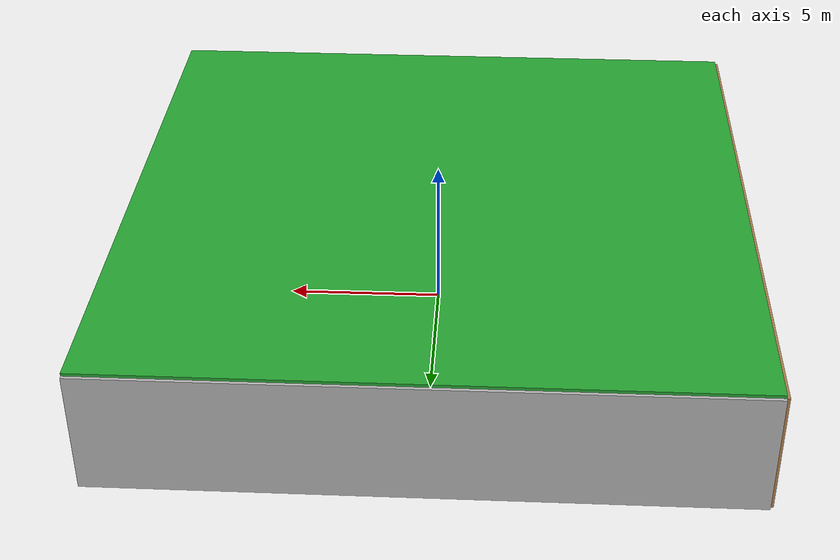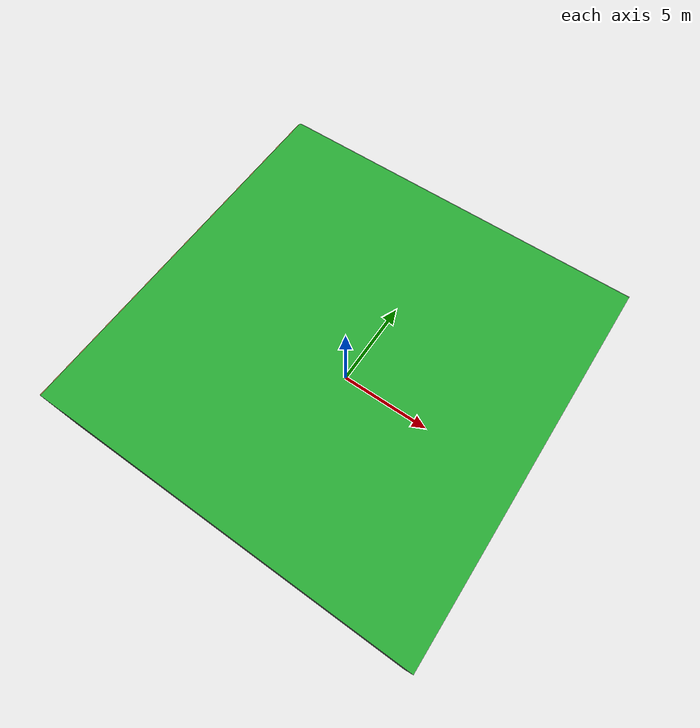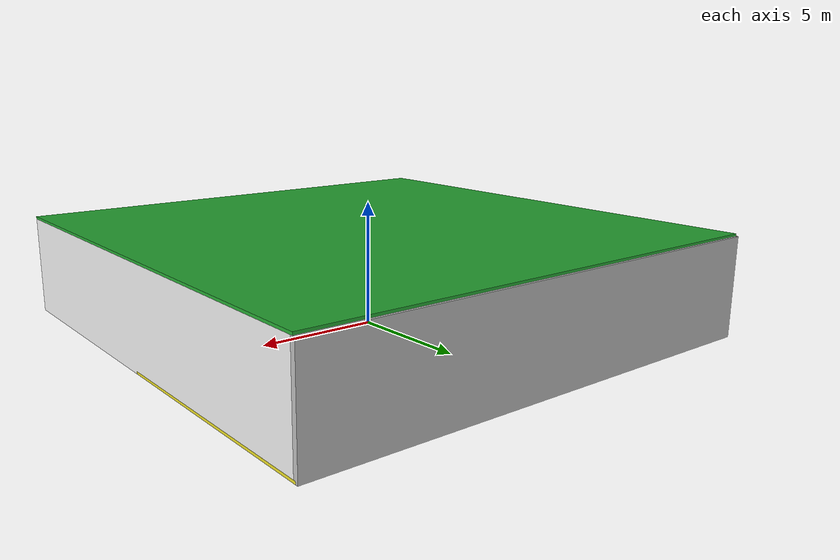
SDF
<sdf version="1.4">
 <world name="default">
  <physics type="ode">
   <max_step_size>0.001</max_step_size>
   <real_time_factor>1</real_time_factor>
   <real_time_update_rate>1000</real_time_update_rate>
   <gravity>0 0 -9.8</gravity>
  </physics>
  <scene><ambient>0.4 0.4 0.4 1</ambient><background>0.7 0.7 0.7 1</background><shadows>1</shadows></scene>
  <model name="Surrounding">
   <static>1</static>
   <link name="Ceiling">
    <collision name="Ceiling_Collision"><geometry><box><size>20 20 0.1</size></box></geometry></collision>
    <visual name="Ceiling_Visual">
     <geometry><box><size>20 20 0.1</size></box></geometry>
     <material>
      <script><uri>file://media/materials/scripts/gazebo.material</uri><name>Gazebo/Green</name></script>
     </material>
    </visual>
    <pose>0 0 4.05 0 0 0</pose>
   </link>
   <link name="Wall_South">
    <collision name="Wall_South_Collision">
     <geometry><box><size>20 0 4</size></box></geometry>
     <pose>0 0 2 0 -0 0</pose>
    </collision>
    <visual name="Wall_South_Visual">
     <pose>0 0 2 0 -0 0</pose>
     <geometry><box><size>20 0 4</size></box></geometry>
     <material>
      <script><uri>file://media/materials/scripts/gazebo.material</uri><name>Gazebo/GreyGradientSky</name></script>
     </material>
    </visual>
    <velocity_decay><linear>0</linear><angular>0</angular></velocity_decay>
    <pose>0 -10 0 0 -0 0</pose>
   </link>
   <link name="Wall_East">
    <collision name="Wall_21_Collision">
     <geometry><box><size>20 0 4</size></box></geometry>
     <pose>0 0 2 0 -0 0</pose>
    </collision>
    <visual name="Wall_21_Visual">
     <pose>0 0 2 0 -0 0</pose>
     <geometry><box><size>20 0 4</size></box></geometry>
     <material>
      <script><uri>file://media/materials/scripts/gazebo.material</uri><name>Gazebo/White</name></script>
     </material>
    </visual>
    <velocity_decay><linear>0</linear><angular>0</angular></velocity_decay>
    <pose>10 0 0 0 -0 1.5708</pose>
   </link>
   <link name="Wall_North">
    <collision name="Wall_22_Collision">
     <geometry><box><size>20 0.2 4</size></box></geometry>
     <pose>0 0 2 0 -0 0</pose>
    </collision>
    <visual name="Wall_22_Visual">
     <pose>0 0 2 0 -0 0</pose>
     <geometry><box><size>20 0.2 4</size></box></geometry>
     <material>
      <script><uri>file://media/materials/scripts/gazebo.material</uri><name>Gazebo/CloudySky</name></script>
     </material>
    </visual>
    <velocity_decay><linear>0</linear><angular>0</angular></velocity_decay>
    <pose>0 10 0 0 -0 0</pose>
   </link>
   <link name="Wall_West">
    <collision name="Wall_23_Collision">
     <geometry><box><size>20 0.2 4</size></box></geometry>
     <pose>0 0 2 0 -0 0</pose>
    </collision>
    <visual name="Wall_23_Visual">
     <pose>0 0 2 0 -0 0</pose>
     <geometry><box><size>20 0.2 4</size></box></geometry>
     <material>
      <script><uri>file://media/materials/scripts/gazebo.material</uri><name>Gazebo/Wood</name></script>
     </material>
    </visual>
    <velocity_decay><linear>0</linear><angular>0</angular></velocity_decay>
    <pose>-10 0 0 0 0 -1.5708</pose>
   </link>
   <link name="Ground_link">
    <collision name="collision">
     <pose>0 0 .05 0 -0 0</pose>
     <geometry><box><size>20 20 0.1</size></box></geometry>
    </collision>
    <visual name="visual">
     <pose>0 0 .05 0 -0 0</pose>
     <geometry><box><size>20 20 0.1</size></box></geometry>
     <material>
      <script><uri>file://media/materials/scripts/gazebo.material</uri><name>Gazebo/Yellow</name></script>
     </material>
    </visual>
   </link>
   <static>1</static>
  </model>
  <spherical_coordinates>
   <surface_model>EARTH_WGS84</surface_model>
   <latitude_deg>0</latitude_deg>
   <longitude_deg>0</longitude_deg>
   <elevation>0</elevation>
   <heading_deg>0</heading_deg>
  </spherical_coordinates>
  <light name="lightball_0" type="diffuse">
   <diffuse>0.8 0.8 0.8 1</diffuse>
   <specular>0.2 0.2 0.2 1</specular>
   <attenuation>
    <range>100</range>
    <constant>0.7</constant>
    <linear>0.01</linear>
    <quadratic>0.001</quadratic>
   </attenuation>
   <direction>-0.5 0.1 -0.9</direction>
   <pose>5.59182568667 -4.65707299691 0.515571554724 0 0 0</pose>
  </light>
  <light name="lightball_1" type="diffuse">
   <diffuse>0.8 0.8 0.8 1</diffuse>
   <specular>0.2 0.2 0.2 1</specular>
   <attenuation>
    <range>100</range>
    <constant>0.7</constant>
    <linear>0.01</linear>
    <quadratic>0.001</quadratic>
   </attenuation>
   <direction>-0.5 0.1 -0.9</direction>
   <pose>-4.84402145688 -5.97625537195 0.950058430243 0 0 0</pose>
  </light>
  <light name="lightball_2" type="diffuse">
   <diffuse>0.8 0.8 0.8 1</diffuse>
   <specular>0.2 0.2 0.2 1</specular>
   <attenuation>
    <range>100</range>
    <constant>0.7</constant>
    <linear>0.01</linear>
    <quadratic>0.001</quadratic>
   </attenuation>
   <direction>-0.5 0.1 -0.9</direction>
   <pose>-7.02262429398 6.12709754766 3.1685810676 0 0 0</pose>
  </light>
  <light name="lightball_3" type="diffuse">
   <diffuse>0.8 0.8 0.8 1</diffuse>
   <specular>0.2 0.2 0.2 1</specular>
   <attenuation>
    <range>100</range>
    <constant>0.7</constant>
    <linear>0.01</linear>
    <quadratic>0.001</quadratic>
   </attenuation>
   <direction>-0.5 0.1 -0.9</direction>
   <pose>5.18106457293 -0.618834872043 3.54423332358 0 0 0</pose>
  </light>
  <light name="lightball_4" type="diffuse">
   <diffuse>0.8 0.8 0.8 1</diffuse>
   <specular>0.2 0.2 0.2 1</specular>
   <attenuation>
    <range>100</range>
    <constant>0.7</constant>
    <linear>0.01</linear>
    <quadratic>0.001</quadratic>
   </attenuation>
   <direction>-0.5 0.1 -0.9</direction>
   <pose>-0.55437144223 7.88434545381 2.95681729507 0 0 0</pose>
  </light>
  <light name="lightball_5" type="diffuse">
   <diffuse>0.8 0.8 0.8 1</diffuse>
   <specular>0.2 0.2 0.2 1</specular>
   <attenuation>
    <range>100</range>
    <constant>0.7</constant>
    <linear>0.01</linear>
    <quadratic>0.001</quadratic>
   </attenuation>
   <direction>-0.5 0.1 -0.9</direction>
   <pose>6.72604507227 5.79509553809 2.44988252705 0 0 0</pose>
  </light>
  <light name="lightball_6" type="diffuse">
   <diffuse>0.8 0.8 0.8 1</diffuse>
   <specular>0.2 0.2 0.2 1</specular>
   <attenuation>
    <range>100</range>
    <constant>0.7</constant>
    <linear>0.01</linear>
    <quadratic>0.001</quadratic>
   </attenuation>
   <direction>-0.5 0.1 -0.9</direction>
   <pose>-6.14053514628 7.72981946624 3.65202084242 0 0 0</pose>
  </light>
  <light name="lightball_7" type="diffuse">
   <diffuse>0.8 0.8 0.8 1</diffuse>
   <specular>0.2 0.2 0.2 1</specular>
   <attenuation>
    <range>100</range>
    <constant>0.7</constant>
    <linear>0.01</linear>
    <quadratic>0.001</quadratic>
   </attenuation>
   <direction>-0.5 0.1 -0.9</direction>
   <pose>8.2381896772 -7.95457737267 1.01211107816 0 0 0</pose>
  </light>
  <light name="lightball_8" type="diffuse">
   <diffuse>0.8 0.8 0.8 1</diffuse>
   <specular>0.2 0.2 0.2 1</specular>
   <attenuation>
    <range>100</range>
    <constant>0.7</constant>
    <linear>0.01</linear>
    <quadratic>0.001</quadratic>
   </attenuation>
   <direction>-0.5 0.1 -0.9</direction>
   <pose>-9.49680494814 -6.0865691336 2.26693710107 0 0 0</pose>
  </light>
  <light name="lightball_9" type="diffuse">
   <diffuse>0.8 0.8 0.8 1</diffuse>
   <specular>0.2 0.2 0.2 1</specular>
   <attenuation>
    <range>100</range>
    <constant>0.7</constant>
    <linear>0.01</linear>
    <quadratic>0.001</quadratic>
   </attenuation>
   <direction>-0.5 0.1 -0.9</direction>
   <pose>-8.66209412025 -6.40691239107 1.66715731657 0 0 0</pose>
  </light>
  <light name="lightball_10" type="diffuse">
   <diffuse>0.8 0.8 0.8 1</diffuse>
   <specular>0.2 0.2 0.2 1</specular>
   <attenuation>
    <range>100</range>
    <constant>0.7</constant>
    <linear>0.01</linear>
    <quadratic>0.001</quadratic>
   </attenuation>
   <direction>-0.5 0.1 -0.9</direction>
   <pose>-5.46781627926 2.23344867521 3.60883444819 0 0 0</pose>
  </light>
  <light name="lightball_11" type="diffuse">
   <diffuse>0.8 0.8 0.8 1</diffuse>
   <specular>0.2 0.2 0.2 1</specular>
   <attenuation>
    <range>100</range>
    <constant>0.7</constant>
    <linear>0.01</linear>
    <quadratic>0.001</quadratic>
   </attenuation>
   <direction>-0.5 0.1 -0.9</direction>
   <pose>5.38284675122 3.267524565 3.26575187207 0 0 0</pose>
  </light>
  <light name="lightball_12" type="diffuse">
   <diffuse>0.8 0.8 0.8 1</diffuse>
   <specular>0.2 0.2 0.2 1</specular>
   <attenuation>
    <range>100</range>
    <constant>0.7</constant>
    <linear>0.01</linear>
    <quadratic>0.001</quadratic>
   </attenuation>
   <direction>-0.5 0.1 -0.9</direction>
   <pose>-8.95261728845 -3.22876030632 2.77468827573 0 0 0</pose>
  </light>
  <include>
   <uri>model://textured_shapes</uri>
   <pose>0.971264732235 -7.85633880925 0 0 0 1.30050989548</pose>
  </include>
  <include>
   <uri>model://textured_shapes</uri>
   <pose>1.56026325811 -3.8358601739 0 0 0 2.23327376503</pose>
  </include>
  <include>
   <uri>model://textured_shapes</uri>
   <pose>4.05631800109 7.19764824993 0 0 0 0.810660151061</pose>
  </include>
 </world>
</sdf>

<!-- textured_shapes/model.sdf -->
<sdf version="1.6">
  <model name="textured_shapes">
    <pose>0 0 0.5 0 0 0</pose>
    <link name="box">
      <pose>0 -1.5 0 0 0 0</pose>
      <collision name="collision">
        <geometry>
          <box>
            <size>1 1 1</size>
          </box>
        </geometry>
      </collision>
      <visual name="visual">
        <geometry>
          <box>
            <size>1 1 1</size>
          </box>
        </geometry>
        <material>
          <script>
            <uri>model://../model_source/models/textured_shapes/materials/scripts</uri>
            <uri>model://../model_source/models/textured_shapes/materials/textures</uri>
            <name>TexturedShape/Squares</name>
          </script>
        </material>
      </visual>
    </link>
    <link name="sphere">
      <collision name="collision">
        <geometry>
          <sphere>
            <radius>0.5</radius>
          </sphere>
        </geometry>
      </collision>
      <visual name="visual">
        <geometry>
          <sphere>
            <radius>0.5</radius>
          </sphere>
        </geometry>
        <material>
          <script>
            <uri>model://../model_source/models/textured_shapes/materials/scripts</uri>
            <uri>model://../model_source/models/textured_shapes/materials/textures</uri>
            <name>TexturedShape/Squares</name>
          </script>
        </material>
      </visual>
    </link>
    <link name="cylinder">
      <pose>0 1.5 0 0 0 0</pose>
      <collision name="collision">
        <geometry>
          <cylinder>
            <radius>0.5</radius>
            <length>1</length>
          </cylinder>
        </geometry>
      </collision>
      <visual name="visual">
        <geometry>
          <cylinder>
            <radius>0.5</radius>
            <length>1</length>
          </cylinder>
        </geometry>
        <material>
          <script>
            <uri>model://../model_source/models/textured_shapes/materials/scripts</uri>
            <uri>model://../model_source/models/textured_shapes/materials/textures</uri>
            <name>TexturedShape/Squares</name>
          </script>
        </material>
      </visual>
    </link>
  </model>
</sdf>
